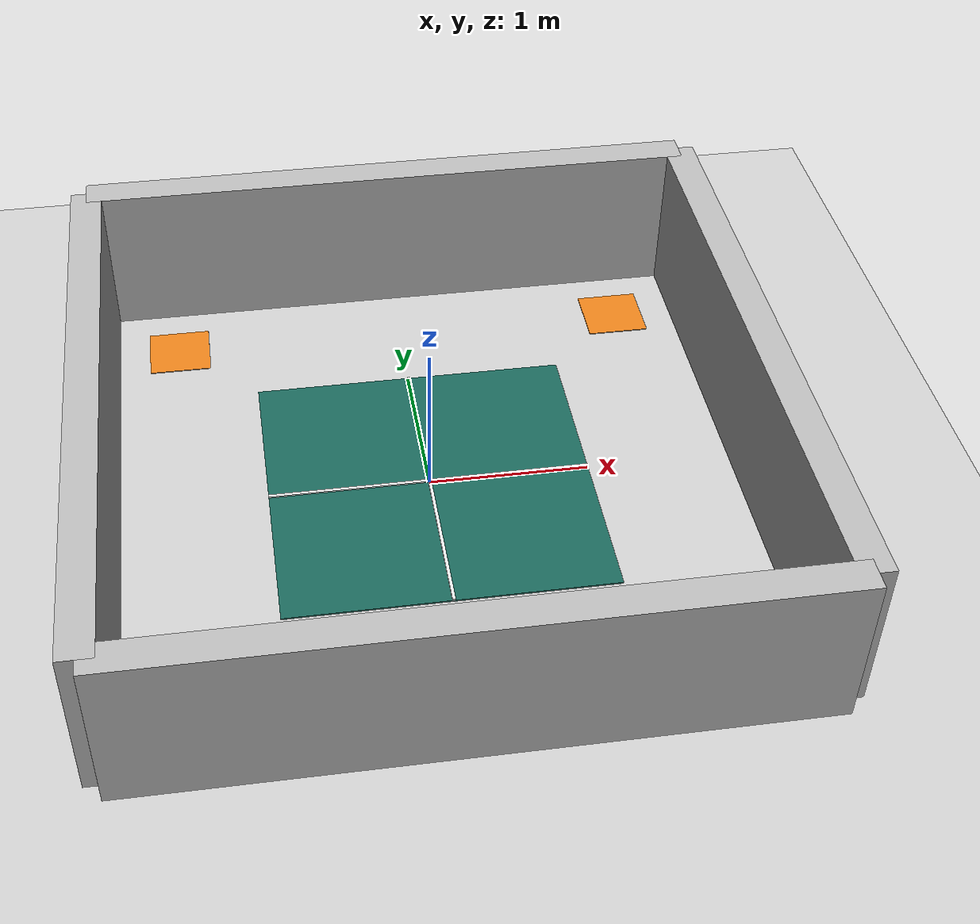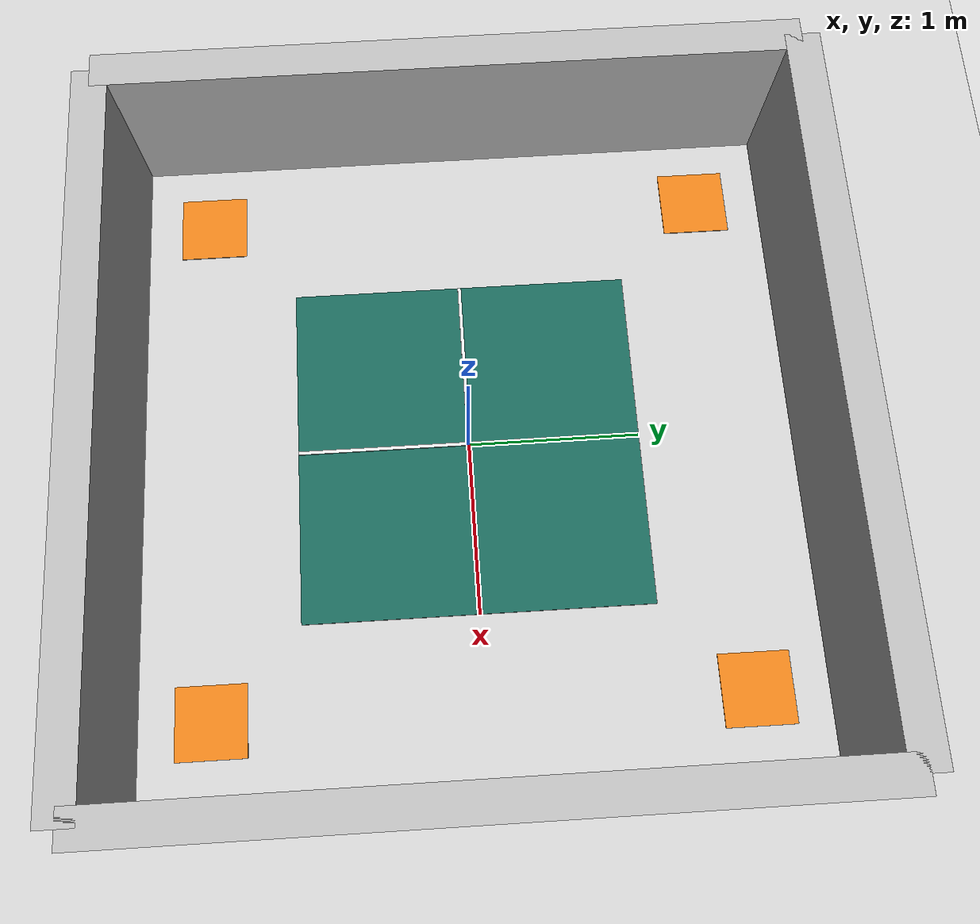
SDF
<?xml version="1.0" ?>

<sdf version="1.8">
  <world name="demo">
    <plugin
      filename="gz-sim-physics-system"
      name="gz::sim::systems::Physics">
    </plugin>
    <plugin
      filename="gz-sim-sensors-system"
      name="gz::sim::systems::Sensors">
      <render_engine>ogre2</render_engine>
    </plugin>
    <plugin
      filename="gz-sim-scene-broadcaster-system"
      name="gz::sim::systems::SceneBroadcaster">
    </plugin>
    <plugin
      filename="gz-sim-user-commands-system"
      name="gz::sim::systems::UserCommands">
    </plugin>

    <light name="sun" type="directional">
      <cast_shadows>true</cast_shadows>
      <pose>0 0 10 0 0 0</pose>
      <diffuse>0.8 0.8 0.8 1</diffuse>
      <specular>0.2 0.2 0.2 1</specular>
      <attenuation>
        <range>1000</range>
        <constant>0.9</constant>
        <linear>0.01</linear>
        <quadratic>0.001</quadratic>
      </attenuation>
      <direction>-0.5 0.1 -0.9</direction>
    </light>

    <model name="ground_plane">
      <static>true</static>
      <link name="link">
        <collision name="collision">
          <geometry>
            <plane>
              <normal>0 0 1</normal>
              <size>100 100</size>
            </plane>
          </geometry>
        </collision>
        <visual name="visual">
          <geometry>
            <plane>
              <normal>0 0 1</normal>
              <size>100 100</size>
            </plane>
          </geometry>
          <material>
            <ambient>0.8 0.8 0.8 1</ambient>
            <diffuse>0.8 0.8 0.8 1</diffuse>
            <specular>0.8 0.8 0.8 1</specular>
          </material>
        </visual>
      </link>
    </model>

    <!-- ═══════ Arena walls (4×4m) ═══════ -->

    <model name="wall1">
      <pose>2 0 0.5 0 0 0</pose>
      <static>true</static>
      <link name="link">
        <visual name="visual">
          <geometry>
            <box>
              <size>0.2 4 1</size>
            </box>
          </geometry>
        </visual>
      </link>
    </model>

    <model name="wall2">
      <pose>-2 0 0.5 0 0 0</pose>
      <static>true</static>
      <link name="link">
        <visual name="visual">
          <geometry>
            <box>
              <size>0.2 4 1</size>
            </box>
          </geometry>
        </visual>
      </link>
    </model>

    <model name="wall3">
      <pose>0 2 0.5 0 0 1.57</pose>
      <static>true</static>
      <link name="link">
        <visual name="visual">
          <geometry>
            <box>
              <size>0.2 4 1</size>
            </box>
          </geometry>
        </visual>
      </link>
    </model>

    <model name="wall4">
      <pose>0 -2 0.5 0 0 1.57</pose>
      <static>true</static>
      <link name="link">
        <visual name="visual">
          <geometry>
            <box>
              <size>0.2 4 1</size>
            </box>
          </geometry>
        </visual>
      </link>
    </model>

    <!-- ═══════ Survey area (2×2m, dark teal) ═══════ -->

    <model name="survey_area">
      <pose>0 0 0.005 0 0 0</pose>
      <static>true</static>
      <link name="link">
        <visual name="visual">
          <geometry>
            <box>
              <size>2 2 0.01</size>
            </box>
          </geometry>
          <material>
            <ambient>0.1 0.4 0.35 1</ambient>
            <diffuse>0.1 0.4 0.35 1</diffuse>
            <specular>0.1 0.1 0.1 1</specular>
          </material>
        </visual>
      </link>
    </model>

    <!-- Grid line: vertical (along Y axis) -->
    <model name="grid_line_y">
      <pose>0 0 0.012 0 0 0</pose>
      <static>true</static>
      <link name="link">
        <visual name="visual">
          <geometry>
            <box>
              <size>0.02 2 0.015</size>
            </box>
          </geometry>
          <material>
            <ambient>0.9 0.9 0.9 1</ambient>
            <diffuse>0.9 0.9 0.9 1</diffuse>
            <specular>0.1 0.1 0.1 1</specular>
          </material>
        </visual>
      </link>
    </model>

    <!-- Grid line: horizontal (along X axis) -->
    <model name="grid_line_x">
      <pose>0 0 0.012 0 0 0</pose>
      <static>true</static>
      <link name="link">
        <visual name="visual">
          <geometry>
            <box>
              <size>2 0.02 0.015</size>
            </box>
          </geometry>
          <material>
            <ambient>0.9 0.9 0.9 1</ambient>
            <diffuse>0.9 0.9 0.9 1</diffuse>
            <specular>0.1 0.1 0.1 1</specular>
          </material>
        </visual>
      </link>
    </model>

    <!-- ═══════ Charging stations (orange pads) ═══════ -->

    <model name="station_1">
      <pose>-1.5 -1.5 0.003 0 0 0</pose>
      <static>true</static>
      <link name="link">
        <visual name="visual">
          <geometry>
            <box>
              <size>0.4 0.4 0.006</size>
            </box>
          </geometry>
          <material>
            <ambient>0.9 0.5 0.1 1</ambient>
            <diffuse>0.9 0.5 0.1 1</diffuse>
            <specular>0.2 0.2 0.2 1</specular>
          </material>
        </visual>
      </link>
    </model>

    <model name="station_2">
      <pose>1.5 -1.5 0.003 0 0 0</pose>
      <static>true</static>
      <link name="link">
        <visual name="visual">
          <geometry>
            <box>
              <size>0.4 0.4 0.006</size>
            </box>
          </geometry>
          <material>
            <ambient>0.9 0.5 0.1 1</ambient>
            <diffuse>0.9 0.5 0.1 1</diffuse>
            <specular>0.2 0.2 0.2 1</specular>
          </material>
        </visual>
      </link>
    </model>

    <model name="station_3">
      <pose>-1.5 1.5 0.003 0 0 0</pose>
      <static>true</static>
      <link name="link">
        <visual name="visual">
          <geometry>
            <box>
              <size>0.4 0.4 0.006</size>
            </box>
          </geometry>
          <material>
            <ambient>0.9 0.5 0.1 1</ambient>
            <diffuse>0.9 0.5 0.1 1</diffuse>
            <specular>0.2 0.2 0.2 1</specular>
          </material>
        </visual>
      </link>
    </model>

    <model name="station_4">
      <pose>1.5 1.5 0.003 0 0 0</pose>
      <static>true</static>
      <link name="link">
        <visual name="visual">
          <geometry>
            <box>
              <size>0.4 0.4 0.006</size>
            </box>
          </geometry>
          <material>
            <ambient>0.9 0.5 0.1 1</ambient>
            <diffuse>0.9 0.5 0.1 1</diffuse>
            <specular>0.2 0.2 0.2 1</specular>
          </material>
        </visual>
      </link>
    </model>

  </world>
</sdf>
